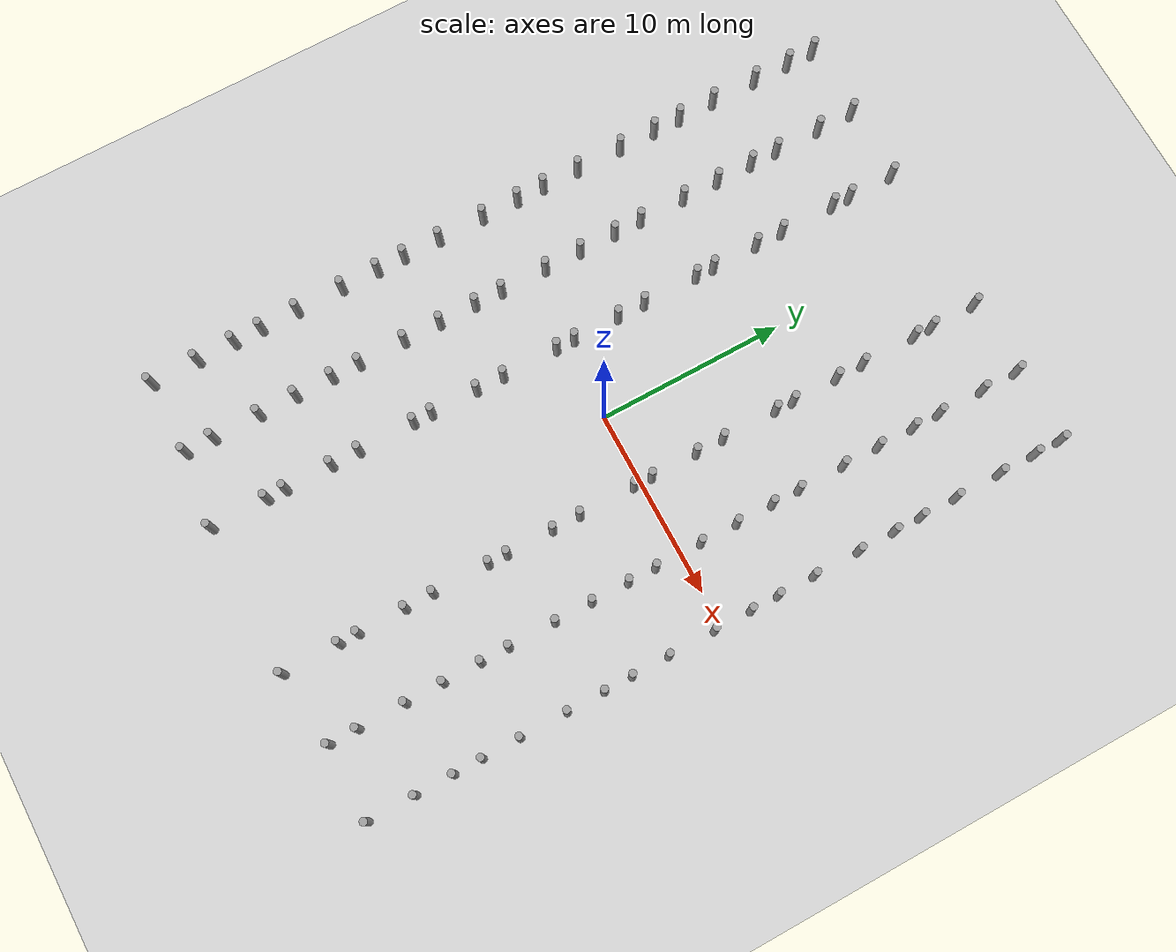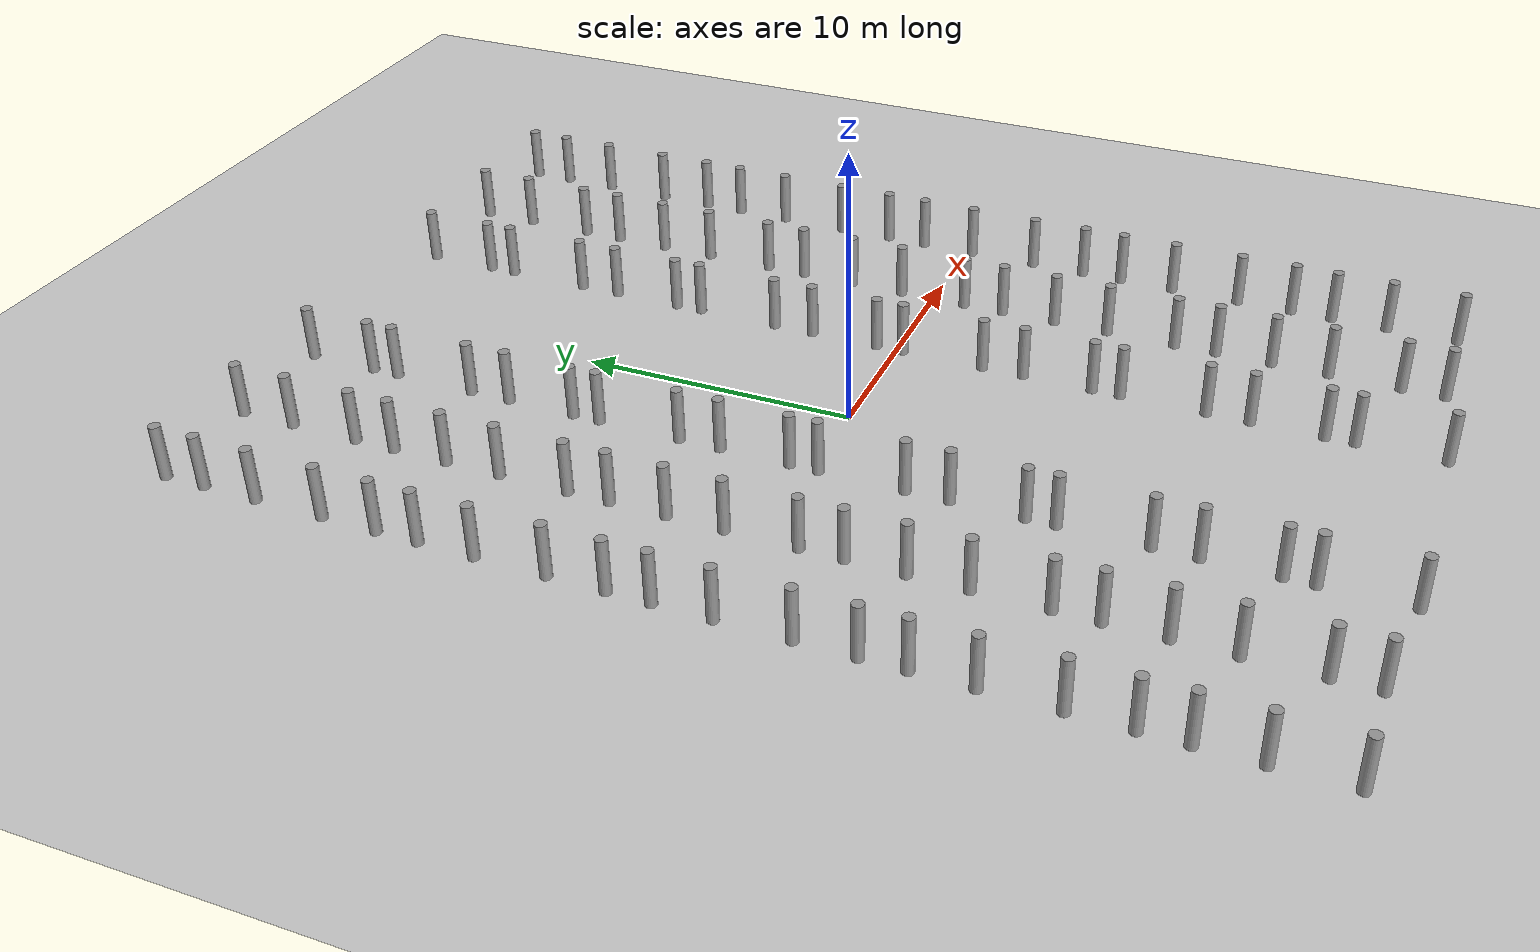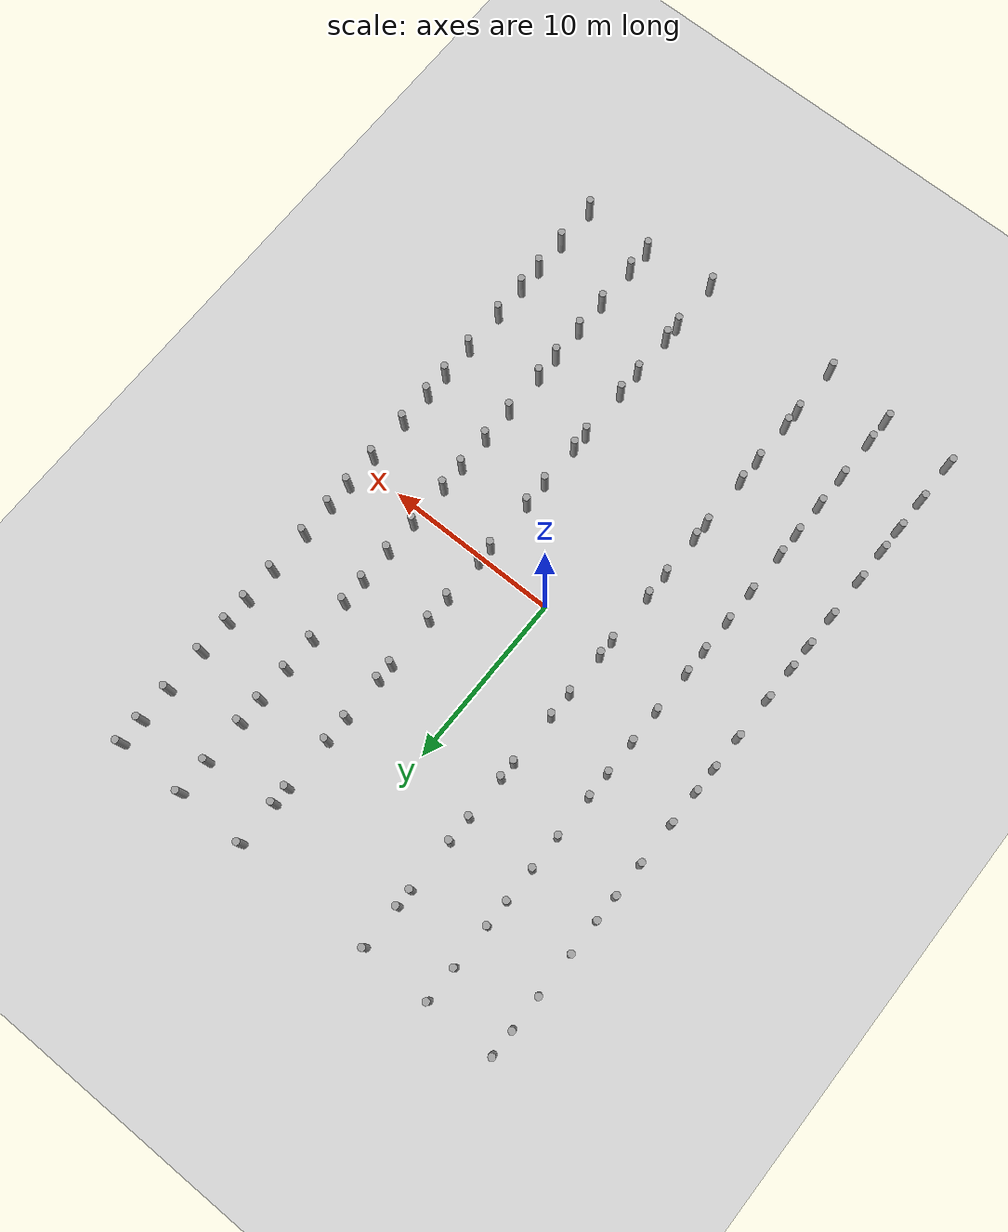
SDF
<sdf version="1.5">
 <world name="default">
  <light type="directional" name="sun">
   <cast_shadows>false</cast_shadows>
   <pose>0 0 100 0 0 0</pose>
   <diffuse>0.8 0.8 0.8 1</diffuse>
   <specular>0.9 0.9 0.9 1</specular>
   <attenuation>
    <range>1000</range>
    <constant>0.9</constant>
    <linear>0.01</linear>
    <quadratic>0.001</quadratic>
   </attenuation>
   <direction>0.15 0.15 -0.9</direction>
  </light>
  <include><uri>model://ground_plane</uri></include>
  <physics type="ode">
   <gravity>0 0 -9.8066</gravity>
   <ode>
    <solver>
     <type>quick</type>
     <iters>150</iters>
     <sor>1.3</sor>
     <use_dynamic_moi_rescaling>0</use_dynamic_moi_rescaling>
    </solver>
    <constraints>
     <cfm>0.00001</cfm>
     <erp>0.15</erp>
     <contact_max_correcting_vel>1000</contact_max_correcting_vel>
     <contact_surface_layer>0.01</contact_surface_layer>
    </constraints>
   </ode>
   <max_step_size>0.004</max_step_size>
   <real_time_factor>1000.0</real_time_factor>
   <real_time_update_rate>250</real_time_update_rate>
   <magnetic_field>6.0e-6 2.3e-5 -4.2e-5</magnetic_field>
  </physics>
  <model name="cylinder_0">
   <include><uri>model://cylinder</uri><pose>4.0 -13.0 1.5 0 0 0</pose></include>
  </model>
  <model name="cylinder_1">
   <include><uri>model://cylinder</uri><pose>8.0 -13.0 1.5 0 0 0</pose></include>
  </model>
  <model name="cylinder_2">
   <include><uri>model://cylinder</uri><pose>12.0 -13.0 1.5 0 0 0</pose></include>
  </model>
  <model name="cylinder_5"><include><uri>model://cylinder</uri><pose>4.0 -5.0 1.5 0 0 0</pose></include></model>
  <model name="cylinder_6"><include><uri>model://cylinder</uri><pose>8.0 -5.0 1.5 0 0 0</pose></include></model>
  <model name="cylinder_7">
   <include><uri>model://cylinder</uri><pose>12.0 -5.0 1.5 0 0 0</pose></include>
  </model>
  <model name="cylinder_10"><include><uri>model://cylinder</uri><pose>4.0 3.0 1.5 0 0 0</pose></include></model>
  <model name="cylinder_11"><include><uri>model://cylinder</uri><pose>8.0 3.0 1.5 0 0 0</pose></include></model>
  <model name="cylinder_12">
   <include><uri>model://cylinder</uri><pose>12.0 3.0 1.5 0 0 0</pose></include>
  </model>
  <model name="cylinder_15">
   <include><uri>model://cylinder</uri><pose>4.0 11.0 1.5 0 0 0</pose></include>
  </model>
  <model name="cylinder_16">
   <include><uri>model://cylinder</uri><pose>8.0 11.0 1.5 0 0 0</pose></include>
  </model>
  <model name="cylinder_17">
   <include><uri>model://cylinder</uri><pose>12.0 11.0 1.5 0 0 0</pose></include>
  </model>
  <model name="cylinder_20">
   <include><uri>model://cylinder</uri><pose>4.0 19.0 1.5 0 0 0</pose></include>
  </model>
  <model name="cylinder_21">
   <include><uri>model://cylinder</uri><pose>8.0 19.0 1.5 0 0 0</pose></include>
  </model>
  <model name="cylinder_22">
   <include><uri>model://cylinder</uri><pose>12.0 19.0 1.5 0 0 0</pose></include>
  </model>
  <model name="cylinder_25">
   <include><uri>model://cylinder</uri><pose>-4.0 -13.0 1.5 0 0 0</pose></include>
  </model>
  <model name="cylinder_26">
   <include><uri>model://cylinder</uri><pose>-8.0 -13.0 1.5 0 0 0</pose></include>
  </model>
  <model name="cylinder_27">
   <include><uri>model://cylinder</uri><pose>-12.0 -13.0 1.5 0 0 0</pose></include>
  </model>
  <model name="cylinder_30">
   <include><uri>model://cylinder</uri><pose>-4.0 -5.0 1.5 0 0 0</pose></include>
  </model>
  <model name="cylinder_31">
   <include><uri>model://cylinder</uri><pose>-8.0 -5.0 1.5 0 0 0</pose></include>
  </model>
  <model name="cylinder_32">
   <include><uri>model://cylinder</uri><pose>-12.0 -5.0 1.5 0 0 0</pose></include>
  </model>
  <model name="cylinder_35">
   <include><uri>model://cylinder</uri><pose>-4.0 3.0 1.5 0 0 0</pose></include>
  </model>
  <model name="cylinder_36">
   <include><uri>model://cylinder</uri><pose>-8.0 3.0 1.5 0 0 0</pose></include>
  </model>
  <model name="cylinder_37">
   <include><uri>model://cylinder</uri><pose>-12.0 3.0 1.5 0 0 0</pose></include>
  </model>
  <model name="cylinder_40">
   <include><uri>model://cylinder</uri><pose>-4.0 11.0 1.5 0 0 0</pose></include>
  </model>
  <model name="cylinder_41">
   <include><uri>model://cylinder</uri><pose>-8.0 11.0 1.5 0 0 0</pose></include>
  </model>
  <model name="cylinder_42">
   <include><uri>model://cylinder</uri><pose>-12.0 11.0 1.5 0 0 0</pose></include>
  </model>
  <model name="cylinder_45">
   <include><uri>model://cylinder</uri><pose>-4.0 19.0 1.5 0 0 0</pose></include>
  </model>
  <model name="cylinder_46">
   <include><uri>model://cylinder</uri><pose>-8.0 19.0 1.5 0 0 0</pose></include>
  </model>
  <model name="cylinder_47">
   <include><uri>model://cylinder</uri><pose>-12.0 19.0 1.5 0 0 0</pose></include>
  </model>
  <model name="cylinder_50">
   <include><uri>model://cylinder</uri><pose>4.0 -15.5 1.5 0 0 0</pose></include>
  </model>
  <model name="cylinder_51">
   <include><uri>model://cylinder</uri><pose>8.0 -15.0 1.5 0 0 0</pose></include>
  </model>
  <model name="cylinder_52">
   <include><uri>model://cylinder</uri><pose>12.0 -14.5 1.5 0 0 0</pose></include>
  </model>
  <model name="cylinder_55">
   <include><uri>model://cylinder</uri><pose>4.0 -7.5 1.5 0 0 0</pose></include>
  </model>
  <model name="cylinder_56">
   <include><uri>model://cylinder</uri><pose>8.0 -7.0 1.5 0 0 0</pose></include>
  </model>
  <model name="cylinder_57">
   <include><uri>model://cylinder</uri><pose>12.0 -6.5 1.5 0 0 0</pose></include>
  </model>
  <model name="cylinder_60"><include><uri>model://cylinder</uri><pose>4.0 0.5 1.5 0 0 0</pose></include></model>
  <model name="cylinder_61"><include><uri>model://cylinder</uri><pose>8.0 1.0 1.5 0 0 0</pose></include></model>
  <model name="cylinder_62">
   <include><uri>model://cylinder</uri><pose>12.0 1.5 1.5 0 0 0</pose></include>
  </model>
  <model name="cylinder_65"><include><uri>model://cylinder</uri><pose>4.0 8.5 1.5 0 0 0</pose></include></model>
  <model name="cylinder_66"><include><uri>model://cylinder</uri><pose>8.0 9.0 1.5 0 0 0</pose></include></model>
  <model name="cylinder_67">
   <include><uri>model://cylinder</uri><pose>12.0 9.5 1.5 0 0 0</pose></include>
  </model>
  <model name="cylinder_70">
   <include><uri>model://cylinder</uri><pose>4.0 16.5 1.5 0 0 0</pose></include>
  </model>
  <model name="cylinder_71">
   <include><uri>model://cylinder</uri><pose>8.0 17.0 1.5 0 0 0</pose></include>
  </model>
  <model name="cylinder_72">
   <include><uri>model://cylinder</uri><pose>12.0 17.5 1.5 0 0 0</pose></include>
  </model>
  <model name="cylinder_75">
   <include><uri>model://cylinder</uri><pose>-4.0 -15.5 1.5 0 0 0</pose></include>
  </model>
  <model name="cylinder_76">
   <include><uri>model://cylinder</uri><pose>-8.0 -15.0 1.5 0 0 0</pose></include>
  </model>
  <model name="cylinder_77">
   <include><uri>model://cylinder</uri><pose>-12.0 -14.5 1.5 0 0 0</pose></include>
  </model>
  <model name="cylinder_80">
   <include><uri>model://cylinder</uri><pose>-4.0 -7.5 1.5 0 0 0</pose></include>
  </model>
  <model name="cylinder_81">
   <include><uri>model://cylinder</uri><pose>-8.0 -7.0 1.5 0 0 0</pose></include>
  </model>
  <model name="cylinder_82">
   <include><uri>model://cylinder</uri><pose>-12.0 -6.5 1.5 0 0 0</pose></include>
  </model>
  <model name="cylinder_85">
   <include><uri>model://cylinder</uri><pose>-4.0 0.5 1.5 0 0 0</pose></include>
  </model>
  <model name="cylinder_86">
   <include><uri>model://cylinder</uri><pose>-8.0 1.0 1.5 0 0 0</pose></include>
  </model>
  <model name="cylinder_87">
   <include><uri>model://cylinder</uri><pose>-12.0 1.5 1.5 0 0 0</pose></include>
  </model>
  <model name="cylinder_90">
   <include><uri>model://cylinder</uri><pose>-4.0 8.5 1.5 0 0 0</pose></include>
  </model>
  <model name="cylinder_91">
   <include><uri>model://cylinder</uri><pose>-8.0 9.0 1.5 0 0 0</pose></include>
  </model>
  <model name="cylinder_92">
   <include><uri>model://cylinder</uri><pose>-12.0 9.5 1.5 0 0 0</pose></include>
  </model>
  <model name="cylinder_95">
   <include><uri>model://cylinder</uri><pose>-4.0 16.5 1.5 0 0 0</pose></include>
  </model>
  <model name="cylinder_96">
   <include><uri>model://cylinder</uri><pose>-8.0 17.0 1.5 0 0 0</pose></include>
  </model>
  <model name="cylinder_97">
   <include><uri>model://cylinder</uri><pose>-12.0 17.5 1.5 0 0 0</pose></include>
  </model>
  <model name="cylinder_100">
   <include><uri>model://cylinder</uri><pose>4.0 -16.5 1.5 0 0 0</pose></include>
  </model>
  <model name="cylinder_101">
   <include><uri>model://cylinder</uri><pose>8.0 -17.5 1.5 0 0 0</pose></include>
  </model>
  <model name="cylinder_102">
   <include><uri>model://cylinder</uri><pose>12.0 -16.5 1.5 0 0 0</pose></include>
  </model>
  <model name="cylinder_105">
   <include><uri>model://cylinder</uri><pose>4.0 -8.5 1.5 0 0 0</pose></include>
  </model>
  <model name="cylinder_106">
   <include><uri>model://cylinder</uri><pose>8.0 -9.5 1.5 0 0 0</pose></include>
  </model>
  <model name="cylinder_107">
   <include><uri>model://cylinder</uri><pose>12.0 -8.5 1.5 0 0 0</pose></include>
  </model>
  <model name="cylinder_110">
   <include><uri>model://cylinder</uri><pose>4.0 -0.5 1.5 0 0 0</pose></include>
  </model>
  <model name="cylinder_111">
   <include><uri>model://cylinder</uri><pose>8.0 -1.5 1.5 0 0 0</pose></include>
  </model>
  <model name="cylinder_112">
   <include><uri>model://cylinder</uri><pose>12.0 -0.5 1.5 0 0 0</pose></include>
  </model>
  <model name="cylinder_115">
   <include><uri>model://cylinder</uri><pose>4.0 7.5 1.5 0 0 0</pose></include>
  </model>
  <model name="cylinder_116">
   <include><uri>model://cylinder</uri><pose>8.0 6.5 1.5 0 0 0</pose></include>
  </model>
  <model name="cylinder_117">
   <include><uri>model://cylinder</uri><pose>12.0 7.5 1.5 0 0 0</pose></include>
  </model>
  <model name="cylinder_120">
   <include><uri>model://cylinder</uri><pose>4.0 15.5 1.5 0 0 0</pose></include>
  </model>
  <model name="cylinder_121">
   <include><uri>model://cylinder</uri><pose>8.0 14.5 1.5 0 0 0</pose></include>
  </model>
  <model name="cylinder_122">
   <include><uri>model://cylinder</uri><pose>12.0 15.5 1.5 0 0 0</pose></include>
  </model>
  <model name="cylinder_125">
   <include><uri>model://cylinder</uri><pose>-4.0 -16.5 1.5 0 0 0</pose></include>
  </model>
  <model name="cylinder_126">
   <include><uri>model://cylinder</uri><pose>-8.0 -17.5 1.5 0 0 0</pose></include>
  </model>
  <model name="cylinder_127">
   <include><uri>model://cylinder</uri><pose>-12.0 -16.5 1.5 0 0 0</pose></include>
  </model>
  <model name="cylinder_130">
   <include><uri>model://cylinder</uri><pose>-4.0 -8.5 1.5 0 0 0</pose></include>
  </model>
  <model name="cylinder_131">
   <include><uri>model://cylinder</uri><pose>-8.0 -9.5 1.5 0 0 0</pose></include>
  </model>
  <model name="cylinder_132">
   <include><uri>model://cylinder</uri><pose>-12.0 -8.5 1.5 0 0 0</pose></include>
  </model>
  <model name="cylinder_135">
   <include><uri>model://cylinder</uri><pose>-4.0 -0.5 1.5 0 0 0</pose></include>
  </model>
  <model name="cylinder_136">
   <include><uri>model://cylinder</uri><pose>-8.0 -1.5 1.5 0 0 0</pose></include>
  </model>
  <model name="cylinder_137">
   <include><uri>model://cylinder</uri><pose>-12.0 -0.5 1.5 0 0 0</pose></include>
  </model>
  <model name="cylinder_140">
   <include><uri>model://cylinder</uri><pose>-4.0 7.5 1.5 0 0 0</pose></include>
  </model>
  <model name="cylinder_141">
   <include><uri>model://cylinder</uri><pose>-8.0 6.5 1.5 0 0 0</pose></include>
  </model>
  <model name="cylinder_142">
   <include><uri>model://cylinder</uri><pose>-12.0 7.5 1.5 0 0 0</pose></include>
  </model>
  <model name="cylinder_145">
   <include><uri>model://cylinder</uri><pose>-4.0 15.5 1.5 0 0 0</pose></include>
  </model>
  <model name="cylinder_146">
   <include><uri>model://cylinder</uri><pose>-8.0 14.5 1.5 0 0 0</pose></include>
  </model>
  <model name="cylinder_147">
   <include><uri>model://cylinder</uri><pose>-12.0 15.5 1.5 0 0 0</pose></include>
  </model>
  <model name="cylinder_150">
   <include><uri>model://cylinder</uri><pose>4.0 -19.5 1.5 0 0 0</pose></include>
  </model>
  <model name="cylinder_151">
   <include><uri>model://cylinder</uri><pose>8.0 -19.0 1.5 0 0 0</pose></include>
  </model>
  <model name="cylinder_152">
   <include><uri>model://cylinder</uri><pose>12.0 -19.0 1.5 0 0 0</pose></include>
  </model>
  <model name="cylinder_155">
   <include><uri>model://cylinder</uri><pose>4.0 -11.5 1.5 0 0 0</pose></include>
  </model>
  <model name="cylinder_156">
   <include><uri>model://cylinder</uri><pose>8.0 -11.0 1.5 0 0 0</pose></include>
  </model>
  <model name="cylinder_157">
   <include><uri>model://cylinder</uri><pose>12.0 -11.0 1.5 0 0 0</pose></include>
  </model>
  <model name="cylinder_160">
   <include><uri>model://cylinder</uri><pose>4.0 -3.5 1.5 0 0 0</pose></include>
  </model>
  <model name="cylinder_161">
   <include><uri>model://cylinder</uri><pose>8.0 -3.0 1.5 0 0 0</pose></include>
  </model>
  <model name="cylinder_162">
   <include><uri>model://cylinder</uri><pose>12.0 -3.0 1.5 0 0 0</pose></include>
  </model>
  <model name="cylinder_165">
   <include><uri>model://cylinder</uri><pose>4.0 4.5 1.5 0 0 0</pose></include>
  </model>
  <model name="cylinder_166">
   <include><uri>model://cylinder</uri><pose>8.0 5.0 1.5 0 0 0</pose></include>
  </model>
  <model name="cylinder_167">
   <include><uri>model://cylinder</uri><pose>12.0 5.0 1.5 0 0 0</pose></include>
  </model>
  <model name="cylinder_170">
   <include><uri>model://cylinder</uri><pose>4.0 12.5 1.5 0 0 0</pose></include>
  </model>
  <model name="cylinder_171">
   <include><uri>model://cylinder</uri><pose>8.0 13.0 1.5 0 0 0</pose></include>
  </model>
  <model name="cylinder_172">
   <include><uri>model://cylinder</uri><pose>12.0 13.0 1.5 0 0 0</pose></include>
  </model>
  <model name="cylinder_175">
   <include><uri>model://cylinder</uri><pose>-4.0 -19.5 1.5 0 0 0</pose></include>
  </model>
  <model name="cylinder_176">
   <include><uri>model://cylinder</uri><pose>-8.0 -19.0 1.5 0 0 0</pose></include>
  </model>
  <model name="cylinder_177">
   <include><uri>model://cylinder</uri><pose>-12.0 -19.0 1.5 0 0 0</pose></include>
  </model>
  <model name="cylinder_180">
   <include><uri>model://cylinder</uri><pose>-4.0 -11.5 1.5 0 0 0</pose></include>
  </model>
  <model name="cylinder_181">
   <include><uri>model://cylinder</uri><pose>-8.0 -11.0 1.5 0 0 0</pose></include>
  </model>
  <model name="cylinder_182">
   <include><uri>model://cylinder</uri><pose>-12.0 -11.0 1.5 0 0 0</pose></include>
  </model>
  <model name="cylinder_185">
   <include><uri>model://cylinder</uri><pose>-4.0 -3.5 1.5 0 0 0</pose></include>
  </model>
  <model name="cylinder_186">
   <include><uri>model://cylinder</uri><pose>-8.0 -3.0 1.5 0 0 0</pose></include>
  </model>
  <model name="cylinder_187">
   <include><uri>model://cylinder</uri><pose>-12.0 -3.0 1.5 0 0 0</pose></include>
  </model>
  <model name="cylinder_190">
   <include><uri>model://cylinder</uri><pose>-4.0 4.5 1.5 0 0 0</pose></include>
  </model>
  <model name="cylinder_191">
   <include><uri>model://cylinder</uri><pose>-8.0 5.0 1.5 0 0 0</pose></include>
   <include><uri>model://cylinder</uri><pose>-12.0 5.0 1.5 0 0 0</pose></include>
  </model>
  <model name="cylinder_195">
   <include><uri>model://cylinder</uri><pose>-4.0 12.5 1.5 0 0 0</pose></include>
  </model>
  <model name="cylinder_196">
   <include><uri>model://cylinder</uri><pose>-8.0 13.0 1.5 0 0 0</pose></include>
  </model>
  <model name="cylinder_197">
   <include><uri>model://cylinder</uri><pose>-12.0 13.0 1.5 0 0 0</pose></include>
  </model>
 </world>
</sdf>

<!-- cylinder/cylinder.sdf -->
<sdf version='1.6'>
  <model name='cylinder'>
    <link name='link'>
      <inertial>
        <mass>1</mass>
        <pose frame=''>0 0 0 0 -0 0</pose>
      </inertial>
      <self_collide>0</self_collide>
      <enable_wind>0</enable_wind>
      <kinematic>0</kinematic>
      <pose frame=''>0 0 0 0 -0 0</pose>
      <gravity>1</gravity>
      <visual name='visual'>
        <geometry>
          <cylinder>
            <radius>0.2</radius>
            <length>2.0</length>
          </cylinder>
        </geometry>
        <material>
          <script>
            <name>Gazebo/Grey</name>
            <uri>file://media/materials/scripts/gazebo.material</uri>
          </script>
        </material>
        <pose frame=''>0 0 0 0 -0 0</pose>
        <transparency>0</transparency>
        <cast_shadows>1</cast_shadows>
      </visual>
      <collision name='collision'>
        <laser_retro>0</laser_retro>
        <max_contacts>10</max_contacts>
        <pose frame=''>0 0 0 0 -0 0</pose>
        <geometry>
          <cylinder>
            <radius>0.2</radius>
            <length>3.0</length>
          </cylinder>
        </geometry>
      </collision>
    </link>
    <static>1</static>
    <allow_auto_disable>1</allow_auto_disable>
  </model>
</sdf>
